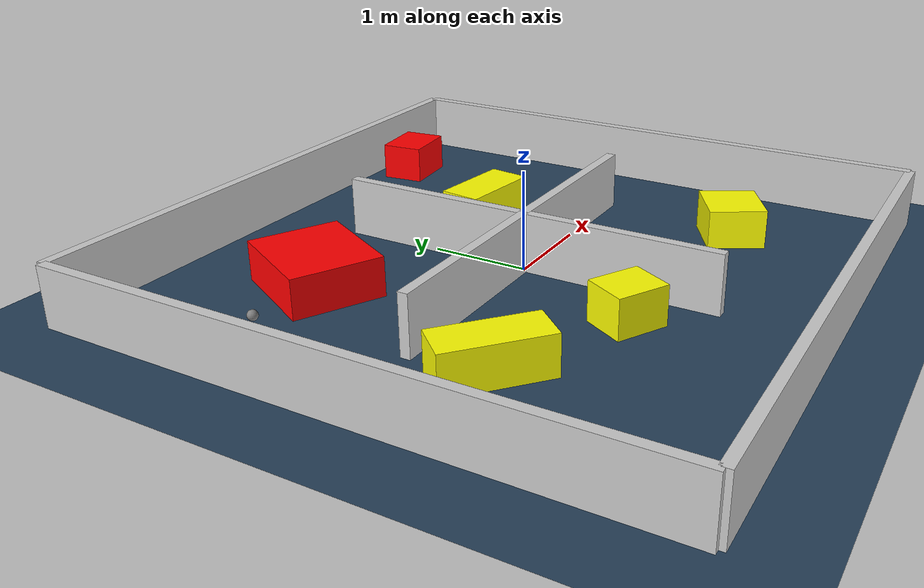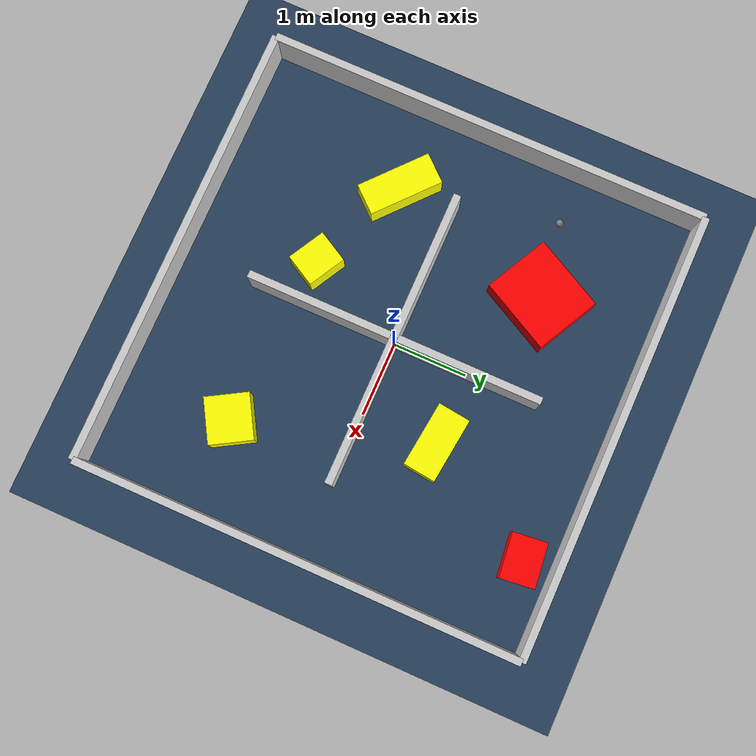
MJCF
<?xml version="1.0" ?>
<mujoco model="generated_environment">
  <option timestep="0.01" integrator="RK4" cone="elliptic"/>
  <default>
    <geom density="1"/>
  </default>
  <asset>
    <texture builtin="gradient" height="3072" rgb1="0.3 0.5 0.7" rgb2="0 0 0" type="skybox" width="512"/>
    <texture builtin="checker" height="300" mark="edge" markrgb="0.8 0.8 0.8" name="groundplane" rgb1="0.2 0.3 0.4" rgb2="0.1 0.2 0.3" type="2d" width="300"/>
    <material name="groundplane" reflectance="0.2" texrepeat="5 5" texture="groundplane" texuniform="true"/>
    <material name="robot" rgba="0.0 1.0 0.0 1"/>
  </asset>
  <worldbody>
    <light dir="0 0 -1" directional="true" pos="0 0 1.5"/>
    <geom condim="4" friction="1.0 0.005 0.001" material="groundplane" name="floor" size="0 0 0.05" type="plane"/>
    <body name="walls">
      <geom name="wall_1" condim="4" pos="-3.0 0.0 0.3" rgba="0.800000011920929 0.800000011920929 0.800000011920929 1.0" size="0.05 3.0 0.3" type="box"/>
      <geom name="wall_2" condim="4" pos="3.0 0.0 0.3" rgba="0.800000011920929 0.800000011920929 0.800000011920929 1.0" size="0.05 3.0 0.3" type="box"/>
      <geom name="wall_3" condim="4" pos="0.0 -3.0 0.3" rgba="0.800000011920929 0.800000011920929 0.800000011920929 1.0" size="3.0 0.05 0.3" type="box"/>
      <geom name="wall_4" condim="4" pos="0.0 3.0 0.3" rgba="0.800000011920929 0.800000011920929 0.800000011920929 1.0" size="3.0 0.05 0.3" type="box"/>
      <geom name="wall_5" condim="4" pos="1.0 0.0 0.3" rgba="0.800000011920929 0.800000011920929 0.800000011920929 1.0" size="1.0 0.05 0.3" type="box"/>
      <geom name="wall_6" condim="4" pos="-1.0 0.0 0.3" rgba="0.800000011920929 0.800000011920929 0.800000011920929 1.0" size="1.0 0.05 0.3" type="box"/>
      <geom name="wall_7" condim="4" pos="0.0 -1.0 0.3" rgba="0.800000011920929 0.800000011920929 0.800000011920929 1.0" size="0.05 1.0 0.3" type="box"/>
      <geom name="wall_8" condim="4" pos="0.0 1.0 0.3" rgba="0.800000011920929 0.800000011920929 0.800000011920929 1.0" size="0.05 1.0 0.3" type="box"/>
    </body>
    <body name="robot">
      <joint name="joint_x" type="slide" pos="0 0 0" axis="1 0 0"/>
      <joint name="joint_y" type="slide" pos="0 0 0" axis="0 1 0"/>
      <geom name="robot" type="sphere" pos="-2.2954167714302214 1.3423523306404 0.2" size="0.05" mass="5." friction="1.0 0.005 0.0001" condim="4"/>
      <site name="sensor_ball"/>
    </body>
    <body name="obstacle_1_movable">
      <geom name="obstacle_1_movable" condim="4" pos="0.9723031518790606 1.0130998045479913 0.2" euler="0 0 353.1247229355672" friction="1.0 0.005 0.001" rgba="1 1 0 1" size="0.4403335912122006 0.21916670023197918 0.2" type="box" mass="0.1"/>
      <joint type="free"/>
    </body>
    <body name="obstacle_2_static">
      <geom name="obstacle_2_static" condim="4" pos="-1.290752441625469 1.4870962112051922 0.2" euler="0 0 62.5593605715055" friction="1.0 0.005 0.001" rgba="1 0 0 1" size="0.5164111566696297 0.4529214046767271 0.2" type="box"/>
    </body>
    <body name="obstacle_3_movable">
      <geom name="obstacle_3_movable" condim="4" pos="-1.8912499616764116 -0.7538261898010687 0.2" euler="0 0 228.66048107898496" friction="1.0 0.005 0.001" rgba="1 1 0 1" size="0.21181490211166368 0.504215385610324 0.2" type="box" mass="0.1"/>
      <joint type="free"/>
    </body>
    <body name="obstacle_4_static">
      <geom name="obstacle_4_static" condim="4" pos="1.872442338448952 2.567750230228819 0.2" euler="0 0 186.32299246556778" friction="1.0 0.005 0.001" rgba="1 0 0 1" size="0.296580535603131 0.2317087608283321 0.2" type="box"/>
    </body>
    <body name="obstacle_5_movable">
      <geom name="obstacle_5_movable" condim="4" pos="1.750854583154442 -1.4875967727136623 0.2" euler="0 0 210.26658143014762" friction="1.0 0.005 0.001" rgba="1 1 0 1" size="0.3058352667476924 0.291275644577052 0.2" type="box" mass="0.1"/>
      <joint type="free"/>
    </body>
    <body name="obstacle_6_movable">
      <geom name="obstacle_6_movable" condim="4" pos="-0.5591186657737124 -1.3307994491030275 0.2" euler="0 0 60.98908631099127" friction="1.0 0.005 0.001" rgba="1 1 0 1" size="0.225638781484972 0.2665353854878276 0.2" type="box" mass="0.1"/>
      <joint type="free"/>
    </body>
  </worldbody>
  <actuator>
    <motor name="actuator_x" joint="joint_x" gear="1" ctrlrange="-1 1"/>
    <motor name="actuator_y" joint="joint_y" gear="1" ctrlrange="-1 1"/>
  </actuator>
</mujoco>
